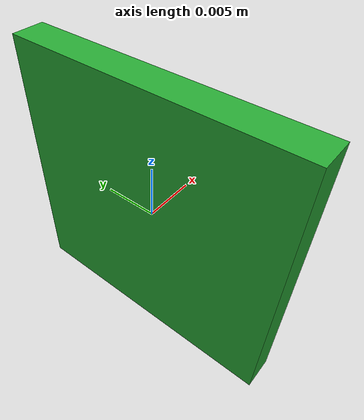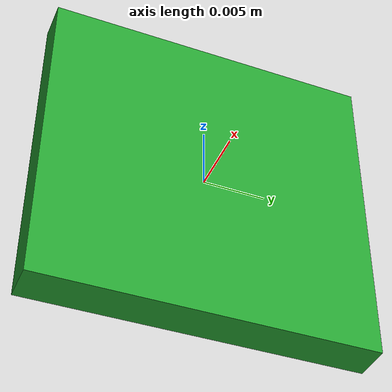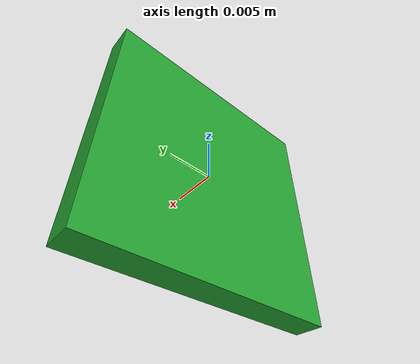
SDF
<?xml version='1.0'?>
<sdf version='1.6'>
  <model name='PiCameraModule'>
    <link name='link'>
      <sensor name='Camera' type='camera'>
        <pose frame=''>0 0 0 0 0 0</pose>
        <visualize>1</visualize>
        <update_rate>5</update_rate>
		<topic>Camera</topic>
		<horizontal_fov>0.9337511</horizontal_fov>
		<vertical_fov>0.7227408</vertical_fov>
		<image>
		  <width>640</width>
		  <height>480</height>
		</image>
		<clip>
		  <near>0.01</near>
		  <far>100</far>
		</clip>
      </sensor>
      <inertial>
        <mass>0.000121069</mass>
        <inertia>
          <ixx>3.83685e-08</ixx>
          <ixy>0</ixy>
          <ixz>0</ixz>
          <iyy>5.94533e-08</iyy>
          <iyz>0</iyz>
          <izz>6.4273e-08</izz>
        </inertia>
        <pose frame=''>0 0 0 0 -0 0</pose>
      </inertial>
      <pose frame=''>0 0 0 0 -0 0</pose>
      <self_collide>0</self_collide>
      <enable_wind>0</enable_wind>
      <kinematic>0</kinematic>
      <visual name='visual'>
        <pose frame=''>0 0 0 0 -0 0</pose>
        <geometry>
          <box>
            <size>0.00304 0.026264 0.025775</size>
          </box>
        </geometry>
        <material>
          <lighting>1</lighting>
          <script>
            <uri>file://media/materials/scripts/gazebo.material</uri>
            <name>Gazebo/Green</name>
          </script>
          <emissive>0 0 0 1</emissive>
        </material>
        <transparency>0</transparency>
        <cast_shadows>1</cast_shadows>
      </visual>
      <collision name='collision'>
        <laser_retro>0</laser_retro>
        <max_contacts>10</max_contacts>
        <pose frame=''>0 0 0 0 -0 0</pose>
        <geometry>
          <box>
            <size>0.00304 0.026264 0.025775</size>
          </box>
        </geometry>
        <surface>
          <friction>
            <ode>
              <mu>1</mu>
              <mu2>1</mu2>
              <fdir1>0 0 0</fdir1>
              <slip1>0</slip1>
              <slip2>0</slip2>
            </ode>
            <torsional>
              <coefficient>1</coefficient>
              <patch_radius>0</patch_radius>
              <surface_radius>0</surface_radius>
              <use_patch_radius>1</use_patch_radius>
              <ode>
                <slip>0</slip>
              </ode>
            </torsional>
          </friction>
          <bounce>
            <restitution_coefficient>0</restitution_coefficient>
            <threshold>1e+06</threshold>
          </bounce>
          <contact>
            <collide_without_contact>0</collide_without_contact>
            <collide_without_contact_bitmask>1</collide_without_contact_bitmask>
            <collide_bitmask>1</collide_bitmask>
            <ode>
              <soft_cfm>0</soft_cfm>
              <soft_erp>0.2</soft_erp>
              <kp>1e+13</kp>
              <kd>1</kd>
              <max_vel>0.01</max_vel>
              <min_depth>0</min_depth>
            </ode>
            <bullet>
              <split_impulse>1</split_impulse>
              <split_impulse_penetration_threshold>-0.01</split_impulse_penetration_threshold>
              <soft_cfm>0</soft_cfm>
              <soft_erp>0.2</soft_erp>
              <kp>1e+13</kp>
              <kd>1</kd>
            </bullet>
          </contact>
        </surface>
      </collision>
    </link>
    <static>0</static>
    <allow_auto_disable>1</allow_auto_disable>
	<plugin name='PiCamera_plugin' filename='file:///~/.gazebo_parts/PiCamera/plugin/build/libPiCamera_plugin.so'/>
  </model>
</sdf>
